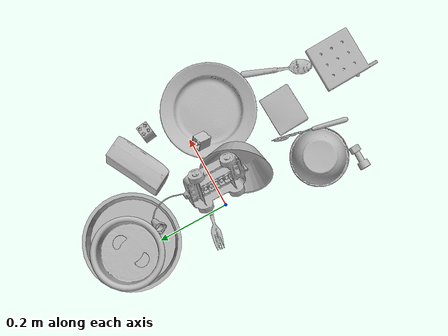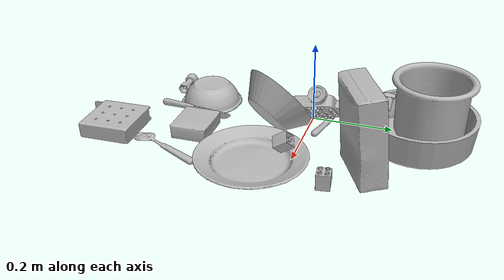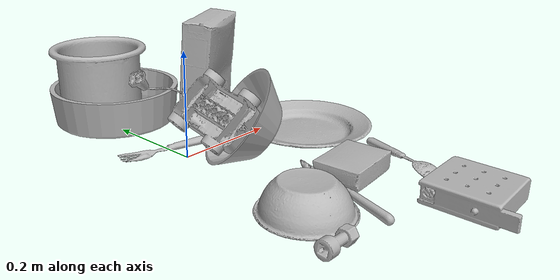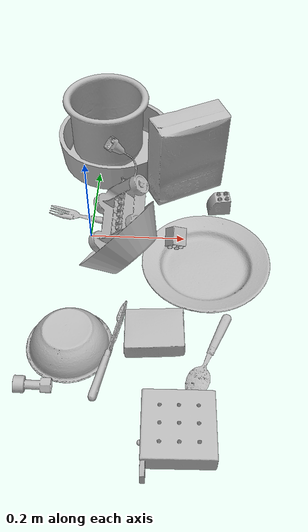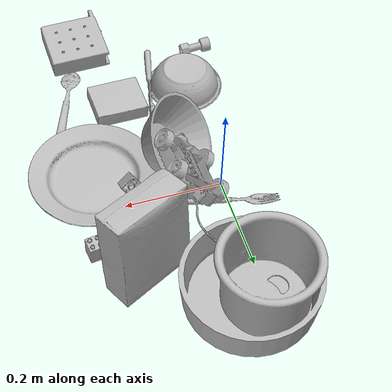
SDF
<sdf version="1.4">
  <world name="default">
    <light name="light1" type="point">
      <pose>0 0 1 0 0 0</pose>
      <diffuse>3 3 3 1</diffuse>
      <specular>3 3 3 1</specular>
    </light>
    <light name="light2" type="point">
      <pose>0 0.5 2 0 0 0</pose>
      <diffuse>1 1 1 1</diffuse>
      <specular>1 1 1 1</specular>
    </light>
    <light name="light3" type="point">
      <pose>0 0.5 2 0 0 0</pose>
      <diffuse>3 3 3 1</diffuse>
      <specular>3 3 3 1</specular>
    </light>
    <scene>
      <ambient>0.7 0.7 0.7</ambient>
    </scene>
    <model name="plate1">
      <link name="link_plate1">
        <collision name="default">
          <geometry>
            <mesh>
              <uri>model://plate/collision_meshes/collision.obj</uri>
              <scale>1.0 1.0 1.0</scale>
            </mesh>
          </geometry>
          <surface>
            <friction>
              <ode>
                <mu>0.5</mu>
                <mu2>0.5</mu2>
              </ode>
            </friction>
          <contact>
        <ode>
            <max_vel>0</max_vel>
            <min_depth>0.0001</min_depth>
            <kp>1e8</kp>
        </ode>
    </contact></surface>
        </collision>
        <visual name="default">
          <geometry>
            <mesh>
              <uri>model://plate/visual_meshes/visual.dae</uri>
              <scale>1.0 1.0 1.0</scale>
            </mesh>
          </geometry>
        </visual>
        <inertial>
          <mass>0.2518167495727539</mass>
          <pose>-0.000604460306931287 0.0002782583760563284 -0.001056198962032795 0.0022187362427659595 -0.003225514577586686 0.4526257716004426</pose>
          <inertia>
            <ixx>0.0011780038</ixx>
            <iyy>0.001166737</iyy>
            <izz>0.0023039998</izz>
            <ixy>0</ixy>
            <ixz>0</ixz>
            <iyz>0</iyz>
          </inertia>
        </inertial>
      </link>
      <pose>0.24421897530555725 -0.08139004558324814 0.014036556705832481 0.0012444855303383707 0.005458430557371241 -2.9078946442657165</pose>
    </model>
    <model name="plate2">
      <link name="link_plate2">
        <collision name="default">
          <geometry>
            <mesh>
              <uri>model://pan_tefal/collision_meshes/collision.obj</uri>
              <scale>1.0 1.0 1.0</scale>
            </mesh>
          </geometry>
          <surface>
            <friction>
              <ode>
                <mu>0.5</mu>
                <mu2>0.5</mu2>
              </ode>
            </friction>
          <contact>
        <ode>
            <max_vel>0</max_vel>
            <min_depth>0.0001</min_depth>
            <kp>1e8</kp>
        </ode>
    </contact></surface>
        </collision>
        <visual name="default">
          <geometry>
            <mesh>
              <uri>model://pan_tefal/visual_meshes/visual.dae</uri>
              <scale>1.0 1.0 1.0</scale>
            </mesh>
          </geometry>
        </visual>
        <inertial>
          <mass>1.062379002571106</mass>
          <pose>-0.00018001841090153903 3.2791107514640316e-05 -0.008514937944710255 0.0008190335190592257 -0.00033013878845789875 -0.3318630487039029</pose>
          <inertia>
            <ixx>0.0073335525</ixx>
            <iyy>0.007380832</iyy>
            <izz>0.013499655</izz>
            <ixy>0</ixy>
            <ixz>0</ixz>
            <iyz>0</iyz>
          </inertia>
        </inertial>
      </link>
      <pose>0.03356197476387024 0.26668015122413635 0.038050029426813126 4.3225273391984605e-07 6.165692344910355e-07 -3.0378085484182775</pose>
    </model>
    <model name="bowl1">
      <link name="link_bowl1">
        <collision name="default">
          <geometry>
            <mesh>
              <uri>model://bowl/collision_meshes/collision.obj</uri>
              <scale>1.0 1.0 1.0</scale>
            </mesh>
          </geometry>
          <surface>
            <friction>
              <ode>
                <mu>0.5</mu>
                <mu2>0.5</mu2>
              </ode>
            </friction>
          <contact>
        <ode>
            <max_vel>0</max_vel>
            <min_depth>0.0001</min_depth>
            <kp>1e8</kp>
        </ode>
    </contact></surface>
        </collision>
        <visual name="default">
          <geometry>
            <mesh>
              <uri>model://bowl/visual_meshes/visual.dae</uri>
              <scale>1.0 1.0 1.0</scale>
            </mesh>
          </geometry>
        </visual>
        <inertial>
          <mass>0.06917417049407959</mass>
          <pose>0.00020445069822017103 -0.0010302119189873338 -0.0008042645640671253 -0.015764106225313407 0.014546789960746879 0.7140402093907182</pose>
          <inertia>
            <ixx>0.00015889853</ixx>
            <iyy>0.00015534814</iyy>
            <izz>0.000267322</izz>
            <ixy>0</ixy>
            <ixz>0</ixz>
            <iyz>0</iyz>
          </inertia>
        </inertial>
      </link>
      <pose>-0.009355789050459862 -0.2824596166610718 0.027247272431850433 -3.132725714671332 0.0006741837847721489 -3.0851614018525786</pose>
    </model>
    <model name="bowl2">
      <link name="link_bowl2">
        <collision name="default">
          <geometry>
            <mesh>
              <uri>model://bowl_a/collision_meshes/collision.obj</uri>
              <scale>1.0 1.0 1.0</scale>
            </mesh>
          </geometry>
          <surface>
            <friction>
              <ode>
                <mu>0.5</mu>
                <mu2>0.5</mu2>
              </ode>
            </friction>
          <contact>
        <ode>
            <max_vel>0</max_vel>
            <min_depth>0.0001</min_depth>
            <kp>1e8</kp>
        </ode>
    </contact></surface>
        </collision>
        <visual name="default">
          <geometry>
            <mesh>
              <uri>model://bowl_a/visual_meshes/visual.dae</uri>
              <scale>1.0 1.0 1.0</scale>
            </mesh>
          </geometry>
        </visual>
        <inertial>
          <mass>0.33581992983818054</mass>
          <pose>0.00027867587050423026 4.7312365495599806e-05 -0.0013765293406322598 -0.0009805275277335347 -0.0010938264345752996 -0.19124334191203107</pose>
          <inertia>
            <ixx>0.00095609494</ixx>
            <iyy>0.0009619646</iyy>
            <izz>0.0017004515</izz>
            <ixy>0</ixy>
            <ixz>0</ixz>
            <iyz>0</iyz>
          </inertia>
        </inertial>
      </link>
      <pose>0.0828658863902092 -0.07983523607254028 0.06416798382997513 0.3150569841411198 -0.9225256870972186 -0.9926368843087529</pose>
    </model>
    <model name="silverware1">
      <link name="link_silverware1">
        <collision name="default">
          <geometry>
            <mesh>
              <uri>model://spoon/collision_meshes/collision.obj</uri>
              <scale>1.0 1.0 1.0</scale>
            </mesh>
          </geometry>
          <surface>
            <friction>
              <ode>
                <mu>0.5</mu>
                <mu2>0.5</mu2>
              </ode>
            </friction>
          <contact>
        <ode>
            <max_vel>0</max_vel>
            <min_depth>0.0001</min_depth>
            <kp>1e8</kp>
        </ode>
    </contact></surface>
        </collision>
        <visual name="default">
          <geometry>
            <mesh>
              <uri>model://spoon/visual_meshes/visual.dae</uri>
              <scale>1.0 1.0 1.0</scale>
            </mesh>
          </geometry>
        </visual>
        <inertial>
          <mass>0.02635110728442669</mass>
          <pose>-0.005526317283511162 -0.0016034177970141172 -0.0007271651993505657 0.03521639754710896 -0.03906583271405073 0.0061506130160543454</pose>
          <inertia>
            <ixx>1.4656912e-06</ixx>
            <iyy>0.0001002651</iyy>
            <izz>0.00010098792</izz>
            <ixy>0</ixy>
            <ixz>0</ixz>
            <iyz>0</iyz>
          </inertia>
        </inertial>
      </link>
      <pose>0.2494896650314331 -0.2948122024536133 0.01013360545039177 3.104974244505256 -0.061977232402642225 -1.9369176051737242</pose>
    </model>
    <model name="box1">
      <link name="link_box1">
        <collision name="default">
          <geometry>
            <mesh>
              <uri>model://cracker_box/collision_meshes/collision.obj</uri>
              <scale>1.0 1.0 1.0</scale>
            </mesh>
          </geometry>
          <surface>
            <friction>
              <ode>
                <mu>0.5</mu>
                <mu2>0.5</mu2>
              </ode>
            </friction>
          <contact>
        <ode>
            <max_vel>0</max_vel>
            <min_depth>0.0001</min_depth>
            <kp>1e8</kp>
        </ode>
    </contact></surface>
        </collision>
        <visual name="default">
          <geometry>
            <mesh>
              <uri>model://cracker_box/visual_meshes/visual.dae</uri>
              <scale>1.0 1.0 1.0</scale>
            </mesh>
          </geometry>
        </visual>
        <inertial>
          <mass>1.9942995309829712</mass>
          <pose>0.0009464178583584726 0.00025434247800149024 -0.0017029533628374338 -0.00031620747948387436 -0.011106490532043566 0.0025467943028284904</pose>
          <inertia>
            <ixx>0.005072607</ixx>
            <iyy>0.008375872</iyy>
            <izz>0.011953138</izz>
            <ixy>0</ixy>
            <ixz>0</ixz>
            <iyz>0</iyz>
          </inertia>
        </inertial>
      </link>
      <pose>0.20127074420452118 0.15420958399772644 0.10714136809110641 -3.0310297005375393 -1.5000608598674292 -1.2154644995508812</pose>
    </model>
    <model name="box2">
      <link name="link_box2">
        <collision name="default">
          <geometry>
            <mesh>
              <uri>model://pudding_box/collision_meshes/collision.obj</uri>
              <scale>1.0 1.0 1.0</scale>
            </mesh>
          </geometry>
          <surface>
            <friction>
              <ode>
                <mu>0.5</mu>
                <mu2>0.5</mu2>
              </ode>
            </friction>
          <contact>
        <ode>
            <max_vel>0</max_vel>
            <min_depth>0.0001</min_depth>
            <kp>1e8</kp>
        </ode>
    </contact></surface>
        </collision>
        <visual name="default">
          <geometry>
            <mesh>
              <uri>model://pudding_box/visual_meshes/visual.dae</uri>
              <scale>1.0 1.0 1.0</scale>
            </mesh>
          </geometry>
        </visual>
        <inertial>
          <mass>0.5201411247253418</mass>
          <pose>0.0004894821904599667 0.0008067885646596551 -0.0005188828217796981 0.00521310178321913 -0.006603799649863257 0.020079825157321304</pose>
          <inertia>
            <ixx>0.0005879929</ixx>
            <iyy>0.00039560578</iyy>
            <izz>0.00086832506</izz>
            <ixy>0</ixy>
            <ixz>0</ixz>
            <iyz>0</iyz>
          </inertia>
        </inertial>
      </link>
      <pose>0.14708584547042847 -0.2586550712585449 0.01972580887377262 0.022348649687043434 -0.011391610854826916 -1.526276949534585</pose>
    </model>
    <model name="cup1">
      <link name="link_cup1">
        <collision name="default">
          <geometry>
            <mesh>
              <uri>model://i_cups/collision_meshes/collision.obj</uri>
              <scale>2.0 2.0 2.0</scale>
            </mesh>
          </geometry>
          <surface>
            <friction>
              <ode>
                <mu>0.5</mu>
                <mu2>0.5</mu2>
              </ode>
            </friction>
          <contact>
        <ode>
            <max_vel>0</max_vel>
            <min_depth>0.0001</min_depth>
            <kp>1e8</kp>
        </ode>
    </contact></surface>
        </collision>
        <visual name="default">
          <geometry>
            <mesh>
              <uri>model://i_cups/visual_meshes/visual.dae</uri>
              <scale>2.0 2.0 2.0</scale>
            </mesh>
          </geometry>
        </visual>
        <inertial>
          <mass>0.946932315826416</mass>
          <pose>0.00022480011102743447 0.0003359477559570223 -0.0017158038681373 -0.02898277199923076 -0.03987335280003036 -0.34591530516328983</pose>
          <inertia>
            <ixx>0.005244167</ixx>
            <iyy>0.0052903723</iyy>
            <izz>0.005861205</izz>
            <ixy>0</ixy>
            <ixz>0</ixz>
            <iyz>0</iyz>
          </inertia>
        </inertial>
      </link>
      <pose>0.012059292756021023 0.28683945536613464 0.08315853029489517 0.00441000659788203 -0.005280034110339829 -3.049778973249005</pose>
    </model>
    <model name="silverware2">
      <link name="link_silverware2">
        <collision name="default">
          <geometry>
            <mesh>
              <uri>model://fork/collision_meshes/collision.obj</uri>
              <scale>1.0 1.0 1.0</scale>
            </mesh>
          </geometry>
          <surface>
            <friction>
              <ode>
                <mu>0.5</mu>
                <mu2>0.5</mu2>
              </ode>
            </friction>
          <contact>
        <ode>
            <max_vel>0</max_vel>
            <min_depth>0.0001</min_depth>
            <kp>1e8</kp>
        </ode>
    </contact></surface>
        </collision>
        <visual name="default">
          <geometry>
            <mesh>
              <uri>model://fork/visual_meshes/visual.dae</uri>
              <scale>1.0 1.0 1.0</scale>
            </mesh>
          </geometry>
        </visual>
        <inertial>
          <mass>0.03207480534911156</mass>
          <pose>-0.02957005240023136 0.00046588238910771906 0.0003218861820641905 -0.013551414501779666 -0.010977842682601763 0.014453906756127453</pose>
          <inertia>
            <ixx>1.1244033e-06</ixx>
            <iyy>8.373807e-05</iyy>
            <izz>8.424099e-05</izz>
            <ixy>0</ixy>
            <ixz>0</ixz>
            <iyz>0</iyz>
          </inertia>
        </inertial>
      </link>
      <pose>-0.0027630608528852463 0.04696691408753395 0.005685936659574509 -0.1741240910904843 0.02593787682433096 2.891897610971779</pose>
    </model>
    <model name="silverware3">
      <link name="link_silverware3">
        <collision name="default">
          <geometry>
            <mesh>
              <uri>model://knife/collision_meshes/collision.obj</uri>
              <scale>1.0 1.0 1.0</scale>
            </mesh>
          </geometry>
          <surface>
            <friction>
              <ode>
                <mu>0.5</mu>
                <mu2>0.5</mu2>
              </ode>
            </friction>
          <contact>
        <ode>
            <max_vel>0</max_vel>
            <min_depth>0.0001</min_depth>
            <kp>1e8</kp>
        </ode>
    </contact></surface>
        </collision>
        <visual name="default">
          <geometry>
            <mesh>
              <uri>model://knife/visual_meshes/visual.dae</uri>
              <scale>1.0 1.0 1.0</scale>
            </mesh>
          </geometry>
        </visual>
        <inertial>
          <mass>0.02260335348546505</mass>
          <pose>-0.023785259574651718 0.0015275129117071629 5.062025593360886e-05 0.073049853839256 0.017248417767033373 -0.0074098225522862896</pose>
          <inertia>
            <ixx>6.41575e-07</ixx>
            <iyy>8.6838445e-05</iyy>
            <izz>8.704508e-05</izz>
            <ixy>0</ixy>
            <ixz>0</ixz>
            <iyz>0</iyz>
          </inertia>
        </inertial>
      </link>
      <pose>0.06695123761892319 -0.29490894079208374 0.013921773061156273 1.3322475224821428 -0.0582488736372304 1.3426234278388753</pose>
    </model>
    <model name="toy1">
      <link name="link_toy1">
        <collision name="default">
          <geometry>
            <mesh>
              <uri>model://nine_hole_peg_test/collision_meshes/collision.obj</uri>
              <scale>1.0 1.0 1.0</scale>
            </mesh>
          </geometry>
          <surface>
            <friction>
              <ode>
                <mu>0.5</mu>
                <mu2>0.5</mu2>
              </ode>
            </friction>
          <contact>
        <ode>
            <max_vel>0</max_vel>
            <min_depth>0.0001</min_depth>
            <kp>1e8</kp>
        </ode>
    </contact></surface>
        </collision>
        <visual name="default">
          <geometry>
            <mesh>
              <uri>model://nine_hole_peg_test/visual_meshes/visual.dae</uri>
              <scale>1.0 1.0 1.0</scale>
            </mesh>
          </geometry>
        </visual>
        <inertial>
          <mass>0.3368244469165802</mass>
          <pose>-0.0046173869632184505 -0.009647615253925323 2.6460689696250483e-05 -0.001466679946039042 0.000719417968587533 -0.6342416610336568</pose>
          <inertia>
            <ixx>0.00052668044</ixx>
            <iyy>0.000491756</iyy>
            <izz>0.00092289934</izz>
            <ixy>0</ixy>
            <ixz>0</ixz>
            <iyz>0</iyz>
          </inertia>
        </inertial>
      </link>
      <pose>0.19082054495811462 -0.4613397419452667 0.020770948380231857 2.097814016943661e-07 3.543918559753504e-08 -3.1131673763669494</pose>
    </model>
    <model name="toy2">
      <link name="link_toy2">
        <collision name="default">
          <geometry>
            <mesh>
              <uri>model://c_toy_airplane/collision_meshes/collision.obj</uri>
              <scale>1.0 1.0 1.0</scale>
            </mesh>
          </geometry>
          <surface>
            <friction>
              <ode>
                <mu>0.5</mu>
                <mu2>0.5</mu2>
              </ode>
            </friction>
          <contact>
        <ode>
            <max_vel>0</max_vel>
            <min_depth>0.0001</min_depth>
            <kp>1e8</kp>
        </ode>
    </contact></surface>
        </collision>
        <visual name="default">
          <geometry>
            <mesh>
              <uri>model://c_toy_airplane/visual_meshes/visual.dae</uri>
              <scale>1.0 1.0 1.0</scale>
            </mesh>
          </geometry>
        </visual>
        <inertial>
          <mass>0.025849465280771255</mass>
          <pose>-0.000230242803809233 -4.4294804979472246e-07 -0.006080531980842352 -0.006193997552816779 -0.016797268968147806 0.7655666586292194</pose>
          <inertia>
            <ixx>1.1869546e-05</ixx>
            <iyy>1.1836047e-05</iyy>
            <izz>2.7867347e-06</izz>
            <ixy>0</ixy>
            <ixz>0</ixz>
            <iyz>0</iyz>
          </inertia>
        </inertial>
      </link>
      <pose>-0.06205126270651817 -0.37633442878723145 0.014860711991786957 -1.6422995661555615 -0.8112983521012804 -1.5024887783289478</pose>
    </model>
    <model name="toy3">
      <link name="link_toy3">
        <collision name="default">
          <geometry>
            <mesh>
              <uri>model://g_lego_duplo/collision_meshes/collision.obj</uri>
              <scale>1.0 1.0 1.0</scale>
            </mesh>
          </geometry>
          <surface>
            <friction>
              <ode>
                <mu>0.5</mu>
                <mu2>0.5</mu2>
              </ode>
            </friction>
          <contact>
        <ode>
            <max_vel>0</max_vel>
            <min_depth>0.0001</min_depth>
            <kp>1e8</kp>
        </ode>
    </contact></surface>
        </collision>
        <visual name="default">
          <geometry>
            <mesh>
              <uri>model://g_lego_duplo/visual_meshes/visual.dae</uri>
              <scale>1.0 1.0 1.0</scale>
            </mesh>
          </geometry>
        </visual>
        <inertial>
          <mass>0.44857048988342285</mass>
          <pose>-0.05004768818616867 0.0017554624937474728 0.0038806761149317026 0.010962989380518968 0.03810827633819491 -0.09653029550410545</pose>
          <inertia>
            <ixx>0.0006499838</ixx>
            <iyy>0.00196511</iyy>
            <izz>0.0024584262</izz>
            <ixy>0</ixy>
            <ixz>0</ixz>
            <iyz>0</iyz>
          </inertia>
        </inertial>
      </link>
      <pose>0.06582405418157578 0.05430453270673752 0.08024820685386658 2.3986992934232854 -0.19503829528661393 1.554755396787709</pose>
    </model>
    <model name="toy4">
      <link name="link_toy4">
        <collision name="default">
          <geometry>
            <mesh>
              <uri>model://b_lego_duplo/collision_meshes/collision.obj</uri>
              <scale>1.0 1.0 1.0</scale>
            </mesh>
          </geometry>
          <surface>
            <friction>
              <ode>
                <mu>0.5</mu>
                <mu2>0.5</mu2>
              </ode>
            </friction>
          <contact>
        <ode>
            <max_vel>0</max_vel>
            <min_depth>0.0001</min_depth>
            <kp>1e8</kp>
        </ode>
    </contact></surface>
        </collision>
        <visual name="default">
          <geometry>
            <mesh>
              <uri>model://b_lego_duplo/visual_meshes/visual.dae</uri>
              <scale>1.0 1.0 1.0</scale>
            </mesh>
          </geometry>
        </visual>
        <inertial>
          <mass>0.028142115101218224</mass>
          <pose>-0.00011053047637687996 -9.15253895072965e-06 0.0019294291269034147 -0.03749502345465157 -0.02635389323626884 0.4519044936865358</pose>
          <inertia>
            <ixx>5.759495e-06</ixx>
            <iyy>5.798213e-06</iyy>
            <izz>5.1315224e-06</izz>
            <ixy>0</ixy>
            <ixz>0</ixz>
            <iyz>0</iyz>
          </inertia>
        </inertial>
      </link>
      <pose>0.18129496276378632 -0.026802219450473785 0.03021218255162239 -2.428527950385069 0.7648484849435256 2.452701117126747</pose>
    </model>
    <model name="toy5">
      <link name="link_toy5">
        <collision name="default">
          <geometry>
            <mesh>
              <uri>model://d_lego_duplo/collision_meshes/collision.obj</uri>
              <scale>1.0 1.0 1.0</scale>
            </mesh>
          </geometry>
          <surface>
            <friction>
              <ode>
                <mu>0.5</mu>
                <mu2>0.5</mu2>
              </ode>
            </friction>
          <contact>
        <ode>
            <max_vel>0</max_vel>
            <min_depth>0.0001</min_depth>
            <kp>1e8</kp>
        </ode>
    </contact></surface>
        </collision>
        <visual name="default">
          <geometry>
            <mesh>
              <uri>model://d_lego_duplo/visual_meshes/visual.dae</uri>
              <scale>1.0 1.0 1.0</scale>
            </mesh>
          </geometry>
        </visual>
        <inertial>
          <mass>0.03456217050552368</mass>
          <pose>0.00283056334592402 0.00016366186900995672 0.0008589798817411065 0.08010865489808279 -0.3835519084219494 0.001029683970252444</pose>
          <inertia>
            <ixx>6.6907255e-06</ixx>
            <iyy>9.495956e-06</iyy>
            <izz>9.1575175e-06</izz>
            <ixy>0</ixy>
            <ixz>0</ixz>
            <iyz>0</iyz>
          </inertia>
        </inertial>
      </link>
      <pose>0.2738664150238037 0.09260454028844833 0.021740006282925606 -2.2657193211021845e-08 -1.4280864103994593e-07 0.13409472958228968</pose>
    </model>
  <physics type="ode">
      <max_contacts>50</max_contacts>
      <ode>
        <solver>
          <type>quick</type>
          <iters>75</iters>
        </solver>
        <constraints>
          <contact_max_correcting_vel>0</contact_max_correcting_vel>
          <contact_surface_layer>0</contact_surface_layer>
        </constraints>
      </ode>
    </physics></world>
</sdf>
